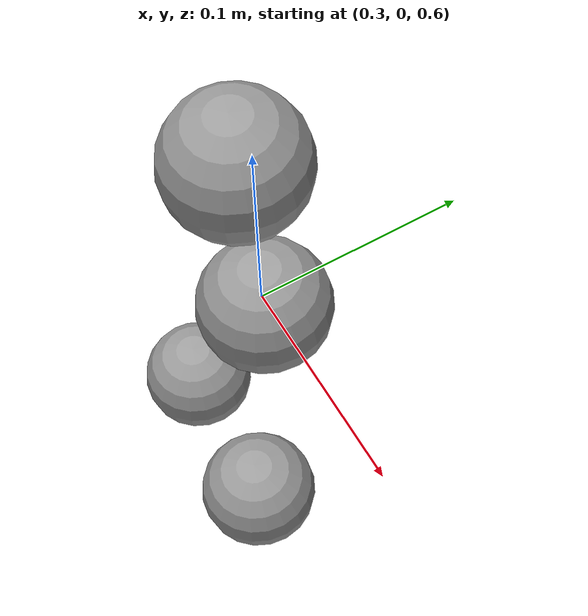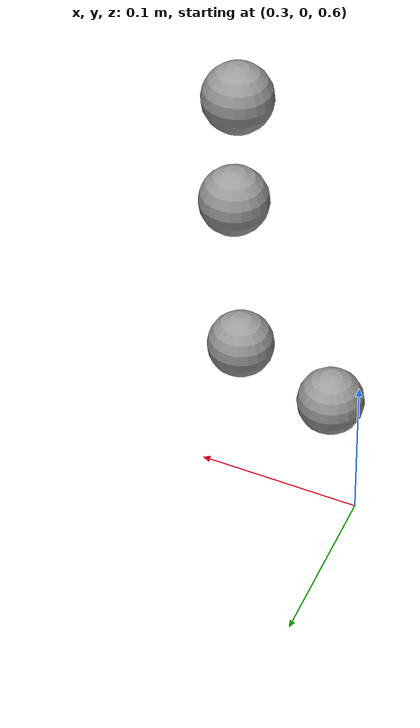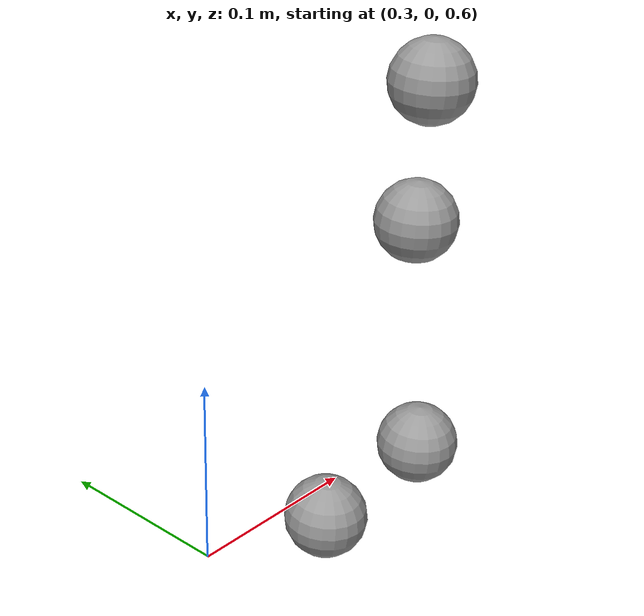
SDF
<sdf version="1.6">
 <world name="default">
  <light name="sun" type="directional">
   <pose>0 0 10 0 -0 0</pose>
   <diffuse>0.8 0.8 0.8 1</diffuse>
   <specular>0.1 0.1 0.1 1</specular>
   <attenuation>
    <range>1000</range>
    <constant>0.9</constant>
    <linear>0.01</linear>
    <quadratic>0.001</quadratic>
   </attenuation>
   <direction>-0.5 0.5 -1</direction>
  </light>
  <model name="ground_plane">
   <static>1</static>
   <link name="link">
    <collision name="collision">
     <geometry><plane><normal>0 0 1</normal><size>100 100</size></plane></geometry>
     <surface><friction><ode><mu>100</mu><mu2>50</mu2></ode></friction></surface>
    </collision>
    <visual name="visual">
     <cast_shadows>0</cast_shadows>
     <geometry><plane><normal>0 0 1</normal><size>100 100</size></plane></geometry>
     <material>
      <script><uri>file://media/materials/scripts/gazebo.material</uri><name>Gazebo/Grey</name></script>
     </material>
    </visual>
   </link>
  </model>
  <gravity>0 0 -9.8</gravity>
  <magnetic_field>6e-06 2.3e-05 -4.2e-05</magnetic_field>
  <atmosphere type="adiabatic"/>
  <physics name="default_physics" default="0" type="ode">
   <max_step_size>0.001</max_step_size>
   <real_time_factor>1</real_time_factor>
   <real_time_update_rate>1000</real_time_update_rate>
  </physics>
  <scene><ambient>0.4 0.4 0.4 1</ambient><background>0.7 0.7 0.7 1</background><shadows>1</shadows></scene>
  <spherical_coordinates>
   <surface_model>EARTH_WGS84</surface_model>
   <latitude_deg>0</latitude_deg>
   <longitude_deg>0</longitude_deg>
   <elevation>0</elevation>
   <heading_deg>0</heading_deg>
  </spherical_coordinates>
  <model name="unit_sphere2_0_4">
   <link name="unit_sphere2_0::link">
    <pose>0 -0.112454 0.338599 0.048323 -0 0</pose>
    <inertial>
     <mass>0.00136338</mass>
     <inertia>
      <ixx>1.68e-06</ixx>
      <ixy>0</ixy>
      <ixz>0</ixz>
      <iyy>1.68e-06</iyy>
      <iyz>0</iyz>
      <izz>1.68e-06</izz>
     </inertia>
    </inertial>
    <gravity>0</gravity>
    <visual name="visual">
     <geometry><sphere><radius>0.0208715</radius></sphere></geometry>
     <material>
      <script><name>Gazebo/Grey</name><uri>file://media/materials/scripts/gazebo.material</uri></script>
      <ambient>0.3 0.3 0.3 1</ambient>
      <diffuse>0.7 0.7 0.7 1</diffuse>
      <specular>0.01 0.01 0.01 1</specular>
      <emissive>0 0 0 1</emissive>
      <shader type="vertex"><normal_map>__default__</normal_map></shader>
     </material>
     <transparency>0.1</transparency>
    </visual>
   </link>
   <static>0</static>
   <pose>0.33608 0.064697 0.291718 0 -0 0</pose>
  </model>
  <model name="unit_sphere2_0">
   <link name="unit_sphere2_0::link">
    <pose>0 -0.112454 0.338599 0.048323 -0 0</pose>
    <inertial>
     <mass>0.00136338</mass>
     <inertia>
      <ixx>1.68e-06</ixx>
      <ixy>0</ixy>
      <ixz>0</ixz>
      <iyy>1.68e-06</iyy>
      <iyz>0</iyz>
      <izz>1.68e-06</izz>
     </inertia>
    </inertial>
    <gravity>0</gravity>
    <visual name="visual">
     <geometry><sphere><radius>0.0208715</radius></sphere></geometry>
     <material>
      <script><name>Gazebo/Grey</name><uri>file://media/materials/scripts/gazebo.material</uri></script>
      <ambient>0.3 0.3 0.3 1</ambient>
      <diffuse>0.7 0.7 0.7 1</diffuse>
      <specular>0.01 0.01 0.01 1</specular>
      <emissive>0 0 0 1</emissive>
      <shader type="vertex"><normal_map>__default__</normal_map></shader>
     </material>
     <transparency>0.1</transparency>
    </visual>
   </link>
   <static>0</static>
   <pose>0.398888 0.057493 0.309428 0 -0 0</pose>
  </model>
  <model name="unit_sphere2_0_0">
   <link name="unit_sphere2_0::link">
    <pose>0 -0.112454 0.338599 0.048323 -0 0</pose>
    <inertial>
     <mass>0.00136338</mass>
     <inertia>
      <ixx>1.68e-06</ixx>
      <ixy>0</ixy>
      <ixz>0</ixz>
      <iyy>1.68e-06</iyy>
      <iyz>0</iyz>
      <izz>1.68e-06</izz>
     </inertia>
    </inertial>
    <gravity>0</gravity>
    <visual name="visual">
     <geometry><sphere><radius>0.0208715</radius></sphere></geometry>
     <material>
      <script><name>Gazebo/Grey</name><uri>file://media/materials/scripts/gazebo.material</uri></script>
      <ambient>0.3 0.3 0.3 1</ambient>
      <diffuse>0.7 0.7 0.7 1</diffuse>
      <specular>0.01 0.01 0.01 1</specular>
      <emissive>0 0 0 1</emissive>
      <shader type="vertex"><normal_map>__default__</normal_map></shader>
     </material>
     <transparency>0.1</transparency>
    </visual>
   </link>
   <static>0</static>
   <pose>0.398239 0.065209 0.431781 0 -0 0</pose>
  </model>
  <model name="unit_sphere2_0_1">
   <link name="unit_sphere2_0::link">
    <pose>0 -0.112454 0.338599 0.048323 -0 0</pose>
    <inertial>
     <mass>0.00136338</mass>
     <inertia>
      <ixx>1.68e-06</ixx>
      <ixy>0</ixy>
      <ixz>0</ixz>
      <iyy>1.68e-06</iyy>
      <iyz>0</iyz>
      <izz>1.68e-06</izz>
     </inertia>
    </inertial>
    <gravity>0</gravity>
    <visual name="visual">
     <geometry><sphere><radius>0.0208715</radius></sphere></geometry>
     <material>
      <script><name>Gazebo/Grey</name><uri>file://media/materials/scripts/gazebo.material</uri></script>
      <ambient>0.3 0.3 0.3 1</ambient>
      <diffuse>0.7 0.7 0.7 1</diffuse>
      <specular>0.01 0.01 0.01 1</specular>
      <emissive>0 0 0 1</emissive>
      <shader type="vertex"><normal_map>__default__</normal_map></shader>
     </material>
     <transparency>0.1</transparency>
    </visual>
   </link>
   <static>0</static>
   <pose>0.397409 0.060016 0.502799 0 -0 0</pose>
  </model>
 </world>
</sdf>
